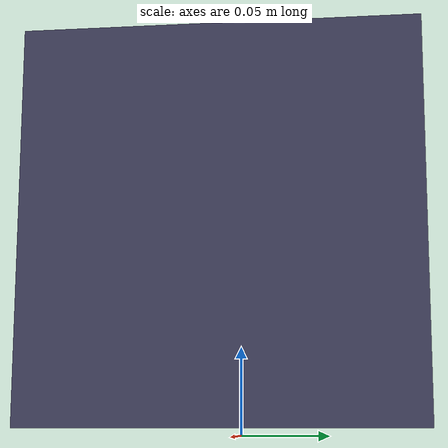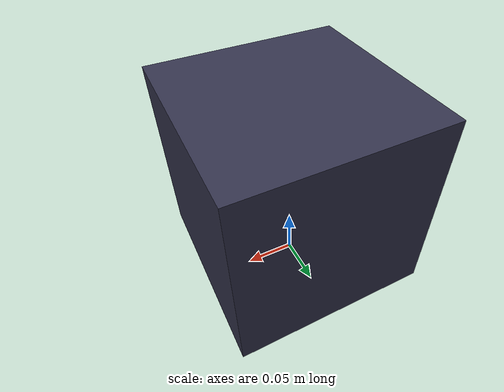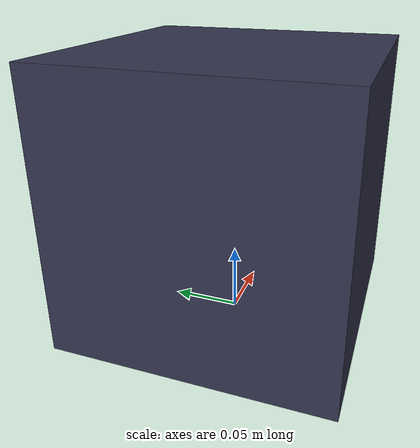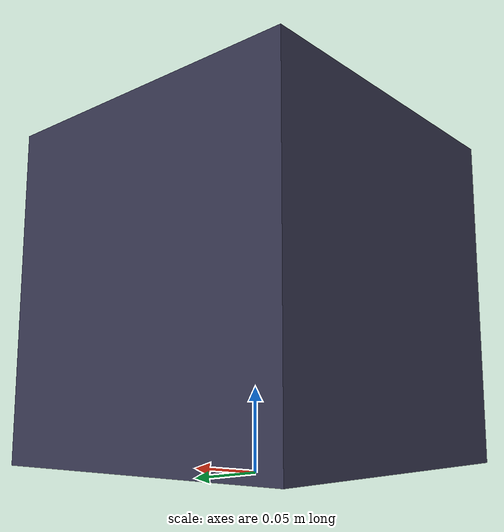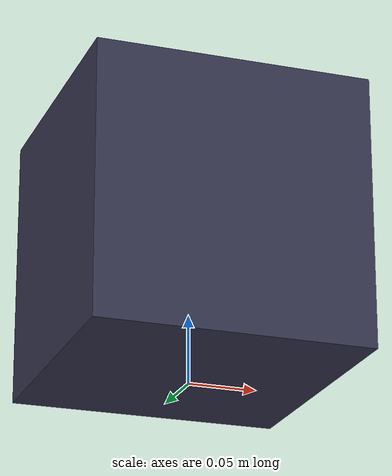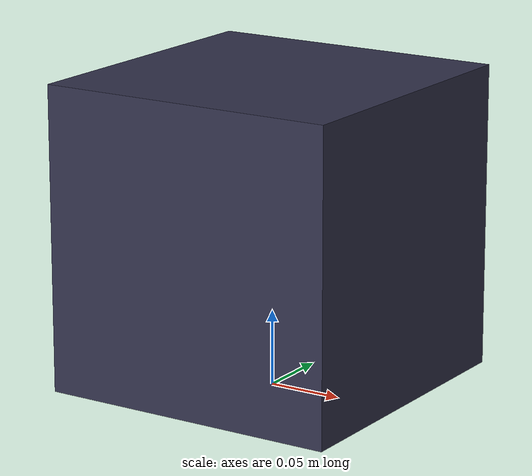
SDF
<sdf version="1.6">
    <model name="car_alternator">
        <allow_auto_disable>true</allow_auto_disable>
        <link name="link_1">
            <kinematic>true</kinematic>
            <pose>0 0 0.105 0 0 0 0</pose>
            <visual name="visual">
                <geometry>
                    <box>
                        <size>0.20 0.20 0.20</size>
                    </box>
                </geometry>
                <material>
                    <ambient>0.2 0.2 0.3 1.0</ambient>
                    <diffuse>0.2 0.2 0.3 1.0</diffuse>
                </material>
            </visual>
            <collision name="collision">
                <geometry>
                    <box>
                        <size>0.20 0.20 0.20</size>
                    </box>
                </geometry>
            </collision>
        </link>
    </model>
</sdf>
